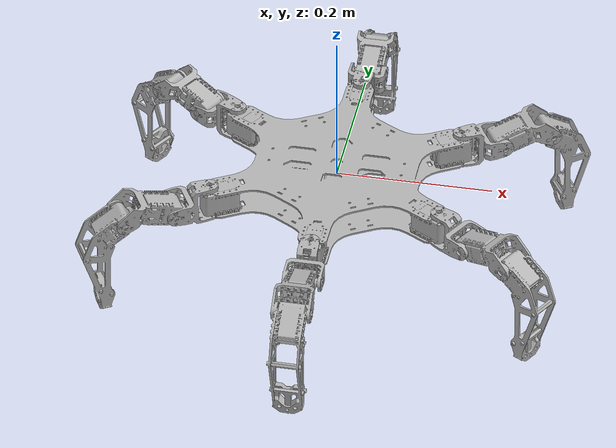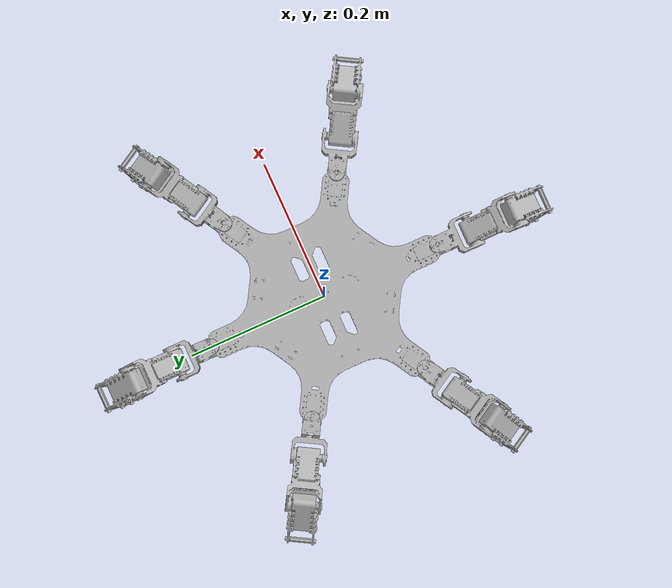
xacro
<?xml version="1.0" encoding="UTF-8" ?>

<robot xmlns:xacro="http://ros.org/wiki/xacro" name="razbot">
<!--Developed by Shubhankar Das a.k.a Razbotics-->

	<!-- parameters -->
	<xacro:property name="pi" value="3.1415926535897931" />
	<xacro:property name="body_length_x" value="0.294" />
	<xacro:property name="body_length_y" value="0.340" />
	<xacro:property name="coxa_length" value="0.052" />
	<xacro:property name="femur_length" value="0.065" />
	<xacro:property name="tibia_length" value="0.133" />
    <gazebo>
        <plugin name="gazebo_ros_control" filename="libgazebo_ros_control.so">
            <robotNamespace>/razbot</robotNamespace>
        </plugin>
    </gazebo>

    <link name="base_link"/>

    <joint name="base_joint" type="fixed">
        <parent link="base_link" />
        <child link="body_link" />
        <origin xyz="0.0 0.0 0.0" rpy="0.0 0.0 0.0" />
    </joint>

	<link name="body_link">
			<visual>
	  			<origin	xyz="0.0 0.0 0.0" rpy="0.0 0.0 0.0" />
      			<geometry>
        			<mesh filename="package://hexapod_description/meshes/razbot/body.stl" scale="0.001 0.001 0.001"/>
      			</geometry>
				<material name="">
					<color rgba="0.7 0.7 0.7 1" />
				</material>
			</visual>
			<collision>
            <origin xyz="0.0 0.0 0.0" rpy="0.0 0.0 0.0"/>
            <geometry>
                <mesh filename="package://hexapod_description/meshes/razbot/body.stl" scale="0.001 0.001 0.001"/>
            </geometry>
            <material name="">
                <color rgba="0.7 0.7 0.7 1"/>
            </material>
        </collision>
        <inertial>
            <origin xyz="0.0 0.0 0.0" rpy="0.0 0.0 0.0" />
            <mass value="0.00001"/>
            <inertia
                ixx="1.0" ixy="0.0"  ixz="0.0"
                iyy="1.0" iyz="0.0"
                izz="1.0" />
        </inertial>
    </link>
    <gazebo reference="body_link">
        <material>Gazebo/DarkGrey</material>
    </gazebo>

	<!-- IMU properties -->
	<joint name="imu_joint" type="fixed">
		<parent link="base_link" />
		<child link="imu_link" />
		<origin xyz="0.0 0.0 0.0" rpy="0.0 0.0 0.0" />
	</joint>
	<link name="imu_link">
        <inertial>
            <origin xyz="0.0 0.0 0.0" rpy="0.0 0.0 0.0" />
            <mass value="0.00001"/>
            <inertia
                ixx="1.0" ixy="0.0"  ixz="0.0"
                iyy="1.0" iyz="0.0"
                izz="1.0" />
        </inertial>
    </link>

	<!-- Joint properties -->
	<xacro:property name="joint_lower_limit" value="-${3.14}" />
	<xacro:property name="joint_upper_limit" value="${3.14}" />
	<xacro:property name="joint_effort" value="6.0" />
	<xacro:property name="joint_velocity" value="0.524" />

	<!-- Leg macro -->
	<xacro:macro name="leg" params="side position x y angle axis">

		<!-- leg position -->
		<joint name="leg_center_joint_${side}${position}" type="fixed">
			<origin xyz="${x} ${y} 0.0" rpy="0.0 0.0 0.0" />
			<parent link="body_link" />
			<child link="leg_center_${side}${position}" />
		</joint>

		<link name="leg_center_${side}${position}" >
            <inertial>
                <origin xyz="0.0 0.0 0.0" rpy="0.0 0.0 0.0" />
                <mass value="0.00001"/>
                <inertia
                    ixx="1.0" ixy="0.0"  ixz="0.0"
                    iyy="1.0" iyz="0.0"
                    izz="1.0" />
            </inertial>
        </link>

		<!-- coxa -->
		<joint name="coxa_joint_${side}${position}" type="revolute">
			<origin xyz="0.0 0.0 0.0" rpy="0.0 0.0 ${angle}" />
			<parent link="leg_center_${side}${position}" />
			<child link="coxa_${side}${position}" />
			<axis xyz="0.0 0.0 1.0" />
			<limit lower="${joint_lower_limit}" upper="${joint_upper_limit}" effort="${joint_effort}" velocity="${joint_velocity}" />
		</joint>
		<transmission name="coxa_transmission_${side}${position}">
            <type>transmission_interface/SimpleTransmission</type>
            <joint name="coxa_joint_${side}${position}">
                <hardwareInterface>EffortJointInterface</hardwareInterface>
            </joint>
            <actuator name="coxa_motor_${side}${position}">
                <hardwareInterface>EffortJointInterface</hardwareInterface>
                <mechanicalReduction>1</mechanicalReduction>
            </actuator>
        </transmission>
        <link name="coxa_${side}${position}">
            <visual>
                <origin xyz="0.0 0.0 0.0" rpy="0.0 0.0 0.0"/>
                <geometry>
                    <mesh filename="package://hexapod_description/meshes/razbot/coxa.stl" scale="0.001 0.001 0.001"/>
                </geometry>
                <material name="">
                    <color rgba="0.7 0.7 0.7 1"/>
                </material>
            </visual>
            <collision>
                <origin xyz="0.0 0.0 0.0" rpy="0.0 0.0 0.0" />
                <geometry>
                    <mesh filename="package://hexapod_description/meshes/razbot/coxa.stl" scale="0.001 0.001 0.001"/>
                </geometry>
                <material name="">
                    <color rgba="0.7 0.7 0.7 1" />
                </material>
            </collision>
            <inertial>
                <origin xyz="0.0 0.0 0.0" rpy="0.0 0.0 0.0" />
                <mass value="0.00001"/>
                <inertia
                    ixx="1.0" ixy="0.0"  ixz="0.0"
                    iyy="1.0" iyz="0.0"
                    izz="1.0" />
            </inertial>
        </link>
        <gazebo reference="coxa_${side}${position}">
            <material>Gazebo/DarkGrey</material>
        </gazebo>

		<!-- femur -->
		<joint name="femur_joint_${side}${position}" type="revolute">
			<origin xyz="${coxa_length} 0.0 0.0" rpy="-${pi/2} ${pi/2} 0.0" />
			<parent link="coxa_${side}${position}" />
			<child link="femur_${side}${position}" />
			<axis xyz="0.0 0.0 ${-axis}" />
			<limit lower="${joint_lower_limit}" upper="${joint_upper_limit}" effort="${joint_effort}" velocity="${joint_velocity}" />
		</joint>
		<transmission name="femur_transmission_${side}${position}">
            <type>transmission_interface/SimpleTransmission</type>
            <joint name="femur_joint_${side}${position}">
                <hardwareInterface>EffortJointInterface</hardwareInterface>
            </joint>
            <actuator name="femur_motor_${side}${position}">
                <hardwareInterface>EffortJointInterface</hardwareInterface>
                <mechanicalReduction>1</mechanicalReduction>
            </actuator>
        </transmission>
        <link name="femur_${side}${position}">
            <visual>
                <origin xyz="0.0 0.0 0.0" rpy="0.0 0.0 0.0"/>
                <geometry>
                    <mesh filename="package://hexapod_description/meshes/razbot/femur.stl" scale="0.001 0.001 0.001"/>
                </geometry>
                <material name="">
                    <color rgba="0.7 0.7 0.7 1"/>
                </material>
            </visual>
            <collision>
                <origin xyz="0.0 0.0 0.0" rpy="0.0 0.0 0.0" />
                <geometry>
                    <mesh filename="package://hexapod_description/meshes/razbot/femur.stl" scale="0.001 0.001 0.001"/>
                </geometry>
                <material name="">
                    <color rgba="0.7 0.7 0.7 1" />
                </material>
            </collision>
            <inertial>
                <origin xyz="0.0 0.0 0.0" rpy="0.0 0.0 0.0" />
                <mass value="0.00001"/>
                <inertia
                    ixx="1.0" ixy="0.0"  ixz="0.0"
                    iyy="1.0" iyz="0.0"
                    izz="1.0" />
            </inertial>
        </link>
        <gazebo reference="femur_${side}${position}">
            <material>Gazebo/DarkGrey</material>
        </gazebo>

		<!-- tibia -->
		<joint name="tibia_joint_${side}${position}" type="revolute">
			<origin xyz="0.0 -${femur_length} 0.0" rpy="${pi} 0.0 0.0" />
			<parent link="femur_${side}${position}" />
			<child link="tibia_${side}${position}" />
			<axis xyz="0.0 0.0 ${axis}" />
			<limit lower="${joint_lower_limit}" upper="${joint_upper_limit}" effort="${joint_effort}" velocity="${joint_velocity}" />
		</joint>
		<transmission name="tibia_transmission_${side}${position}">
            <type>transmission_interface/SimpleTransmission</type>
            <joint name="tibia_joint_${side}${position}">
                <hardwareInterface>EffortJointInterface</hardwareInterface>
            </joint>
            <actuator name="tibia_motor_${side}${position}">
                <hardwareInterface>EffortJointInterface</hardwareInterface>
                <mechanicalReduction>1</mechanicalReduction>
            </actuator>
        </transmission>
        <link name="tibia_${side}${position}">
            <visual>
                <origin xyz="0.0 0.0 0.0" rpy="0.0 0.0 0.0"/>
                <geometry>
                    <mesh filename="package://hexapod_description/meshes/razbot/tibia.stl" scale="0.001 0.001 0.001"/>
                </geometry>
                <material name="">
                    <color rgba="0.7 0.7 0.7 1"/>
                </material>
            </visual>
            <collision>
                <origin xyz="0.0 0.0 0.0" rpy="0.0 0.0 0.0" />
                <geometry>
                    <mesh filename="package://hexapod_description/meshes/razbot/tibia.stl" scale="0.001 0.001 0.001"/>
                </geometry>
                <material name="">
                    <color rgba="0.7 0.7 0.7 1" />
                </material>
            </collision>
            <inertial>
                <origin xyz="0.0 0.0 0.0" rpy="0.0 0.0 0.0" />
                <mass value="0.00001"/>
                <inertia
                    ixx="1.0" ixy="0.0"  ixz="0.0"
                    iyy="1.0" iyz="0.0"
                    izz="1.0" />
            </inertial>
        </link>
        <gazebo reference="tibia_${side}${position}">
            <material>Gazebo/DarkGrey</material>
        </gazebo>

	</xacro:macro>

<!-- Build robot model -->
	<xacro:leg side="R" position="R" x="-${body_length_x/2}" y="-${0.1695/2}" angle="-${5*pi/6}" axis="1" />
	<xacro:leg side="R" position="M" x="0.0" y="-${body_length_y/2}" angle="-${pi/2}" axis="1" />
	<xacro:leg side="R" position="F" x="${body_length_x/2}" y="-${0.1695/2}" angle="-${pi/6}" axis="1" />

	<xacro:leg side="L" position="R" x="-${body_length_x/2}" y="${0.1695/2}" angle="${5*pi/6}" axis="-1" />
	<xacro:leg side="L" position="M" x="0.0" y="${body_length_y/2}" angle="${pi/2}" axis="-1" />
	<xacro:leg side="L" position="F" x="${body_length_x/2}" y="${0.1695/2}" angle="${pi/6}" axis="-1" />

</robot>
